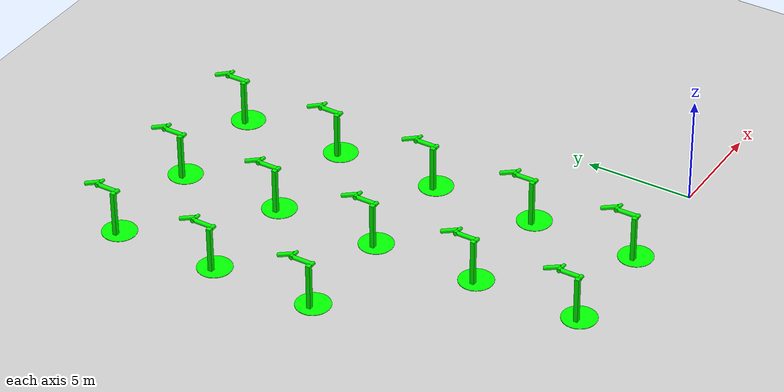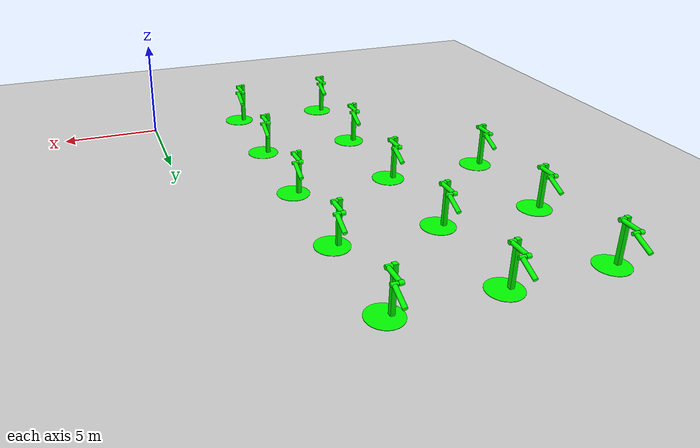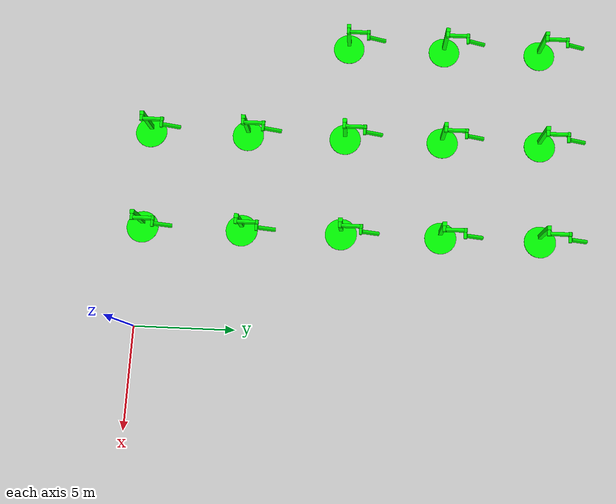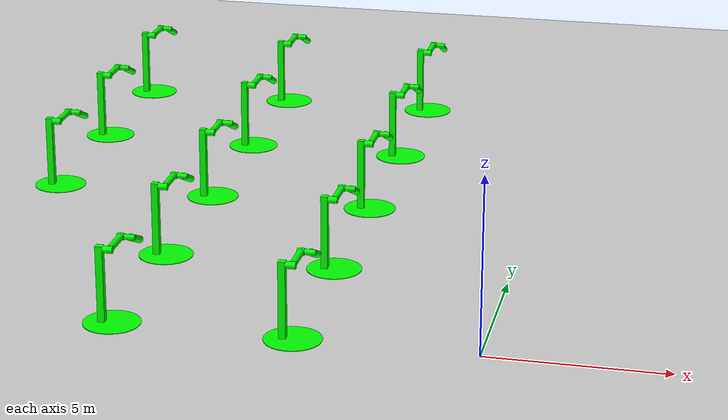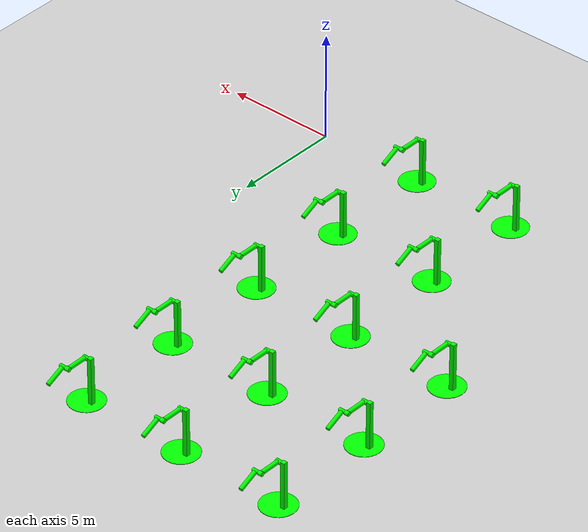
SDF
<sdf version="1.6">
 <world name="double_pendulums">
  <model name="ground_plane">
   <static>true</static>
   <link name="link">
    <collision name="collision">
     <geometry><plane><normal>0 0 1</normal><size>100 100</size></plane></geometry>
    </collision>
    <visual name="visual">
     <geometry><plane><normal>0 0 1</normal><size>100 100</size></plane></geometry>
     <material>
      <ambient>0.8 0.8 0.8 1</ambient>
      <diffuse>0.8 0.8 0.8 1</diffuse>
      <specular>0.8 0.8 0.8 1</specular>
     </material>
    </visual>
   </link>
  </model>
  <model name="dbl_pendulum_3">
   <pose>-10 0 0 0 0 0</pose>
   <link name="base">
    <inertial><mass>100</mass></inertial>
    <visual name="vis_plate_on_ground">
     <pose>0 0 0.01 0 0 0</pose>
     <geometry><cylinder><radius>0.8</radius><length>0.02</length></cylinder></geometry>
     <material><ambient>0 1 0 1</ambient><diffuse>0 1 0 1</diffuse><specular>0 1 0 1</specular></material>
    </visual>
    <visual name="vis_pole">
     <pose>-0.275 0 1.1 0 0 0</pose>
     <geometry><box><size>0.2 0.2 2.2</size></box></geometry>
     <material><ambient>0 1 0 1</ambient><diffuse>0 1 0 1</diffuse><specular>0 1 0 1</specular></material>
    </visual>
    <collision name="col_plate_on_ground">
     <pose>0 0 0.01 0 0 0</pose>
     <geometry><cylinder><radius>0.8</radius><length>0.02</length></cylinder></geometry>
    </collision>
    <collision name="col_pole">
     <pose>-0.275 0 1.1 0 0 0</pose>
     <geometry><box><size>0.2 0.2 2.2</size></box></geometry>
    </collision>
   </link>
   <link name="upper_link">
    <pose>0 0 2.1 -1.5708 0 0</pose>
    <inertial><pose>0 0 0.5 0 0 0</pose></inertial>
    <visual name="vis_upper_joint">
     <pose>-0.05 0 0 0 1.5708 0</pose>
     <geometry><cylinder><radius>0.1</radius><length>0.3</length></cylinder></geometry>
     <material><ambient>0 1 0 1</ambient><diffuse>0 1 0 1</diffuse><specular>0 1 0 1</specular></material>
    </visual>
    <visual name="vis_lower_joint">
     <pose>0 0 1.0 0 1.5708 0</pose>
     <geometry><cylinder><radius>0.1</radius><length>0.2</length></cylinder></geometry>
     <material><ambient>0 1 0 1</ambient><diffuse>0 1 0 1</diffuse><specular>0 1 0 1</specular></material>
    </visual>
    <visual name="vis_cylinder">
     <pose>0 0 0.5 0 0 0</pose>
     <geometry><cylinder><radius>0.1</radius><length>0.9</length></cylinder></geometry>
     <material><ambient>0 1 0 1</ambient><diffuse>0 1 0 1</diffuse><specular>0 1 0 1</specular></material>
    </visual>
    <collision name="col_upper_joint">
     <pose>-0.05 0 0 0 1.5708 0</pose>
     <geometry><cylinder><radius>0.1</radius><length>0.3</length></cylinder></geometry>
    </collision>
    <collision name="col_lower_joint">
     <pose>0 0 1.0 0 1.5708 0</pose>
     <geometry><cylinder><radius>0.1</radius><length>0.2</length></cylinder></geometry>
    </collision>
    <collision name="col_cylinder">
     <pose>0 0 0.5 0 0 0</pose>
     <geometry><cylinder><radius>0.1</radius><length>0.9</length></cylinder></geometry>
    </collision>
   </link>
   <link name="lower_link">
    <pose>0.25 1.0 2.1 -2 0 0</pose>
    <inertial><pose>0 0 0.5 0 0 0</pose></inertial>
    <visual name="vis_lower_joint">
     <pose>0 0 0 0 1.5708 0</pose>
     <geometry><cylinder><radius>0.08</radius><length>0.3</length></cylinder></geometry>
     <material><ambient>0 1 0 1</ambient><diffuse>0 1 0 1</diffuse><specular>0 1 0 1</specular></material>
    </visual>
    <visual name="vis_cylinder">
     <pose>0 0 0.5 0 0 0</pose>
     <geometry><cylinder><radius>0.1</radius><length>0.9</length></cylinder></geometry>
     <material><ambient>0 1 0 1</ambient><diffuse>0 1 0 1</diffuse><specular>0 1 0 1</specular></material>
    </visual>
    <collision name="col_lower_joint">
     <pose>0 0 0 0 1.5708 0</pose>
     <geometry><cylinder><radius>0.08</radius><length>0.3</length></cylinder></geometry>
    </collision>
    <collision name="col_cylinder">
     <pose>0 0 0.5 0 0 0</pose>
     <geometry><cylinder><radius>0.1</radius><length>0.9</length></cylinder></geometry>
    </collision>
   </link>
   <joint name="upper_joint" type="revolute">
    <parent>base</parent>
    <child>upper_link</child>
    <axis><xyz>1.0 0 0</xyz></axis>
   </joint>
   <joint name="lower_joint" type="revolute">
    <parent>upper_link</parent>
    <child>lower_link</child>
    <axis><xyz>1.0 0 0</xyz></axis>
   </joint>
  </model>
  <model name="dbl_pendulum_4">
   <pose>-5 0 0 0 0 0</pose>
   <link name="base">
    <inertial><mass>100</mass></inertial>
    <visual name="vis_plate_on_ground">
     <pose>0 0 0.01 0 0 0</pose>
     <geometry><cylinder><radius>0.8</radius><length>0.02</length></cylinder></geometry>
     <material><ambient>0 1 0 1</ambient><diffuse>0 1 0 1</diffuse><specular>0 1 0 1</specular></material>
    </visual>
    <visual name="vis_pole">
     <pose>-0.275 0 1.1 0 0 0</pose>
     <geometry><box><size>0.2 0.2 2.2</size></box></geometry>
     <material><ambient>0 1 0 1</ambient><diffuse>0 1 0 1</diffuse><specular>0 1 0 1</specular></material>
    </visual>
    <collision name="col_plate_on_ground">
     <pose>0 0 0.01 0 0 0</pose>
     <geometry><cylinder><radius>0.8</radius><length>0.02</length></cylinder></geometry>
    </collision>
    <collision name="col_pole">
     <pose>-0.275 0 1.1 0 0 0</pose>
     <geometry><box><size>0.2 0.2 2.2</size></box></geometry>
    </collision>
   </link>
   <link name="upper_link">
    <pose>0 0 2.1 -1.5708 0 0</pose>
    <inertial><pose>0 0 0.5 0 0 0</pose></inertial>
    <visual name="vis_upper_joint">
     <pose>-0.05 0 0 0 1.5708 0</pose>
     <geometry><cylinder><radius>0.1</radius><length>0.3</length></cylinder></geometry>
     <material><ambient>0 1 0 1</ambient><diffuse>0 1 0 1</diffuse><specular>0 1 0 1</specular></material>
    </visual>
    <visual name="vis_lower_joint">
     <pose>0 0 1.0 0 1.5708 0</pose>
     <geometry><cylinder><radius>0.1</radius><length>0.2</length></cylinder></geometry>
     <material><ambient>0 1 0 1</ambient><diffuse>0 1 0 1</diffuse><specular>0 1 0 1</specular></material>
    </visual>
    <visual name="vis_cylinder">
     <pose>0 0 0.5 0 0 0</pose>
     <geometry><cylinder><radius>0.1</radius><length>0.9</length></cylinder></geometry>
     <material><ambient>0 1 0 1</ambient><diffuse>0 1 0 1</diffuse><specular>0 1 0 1</specular></material>
    </visual>
    <collision name="col_upper_joint">
     <pose>-0.05 0 0 0 1.5708 0</pose>
     <geometry><cylinder><radius>0.1</radius><length>0.3</length></cylinder></geometry>
    </collision>
    <collision name="col_lower_joint">
     <pose>0 0 1.0 0 1.5708 0</pose>
     <geometry><cylinder><radius>0.1</radius><length>0.2</length></cylinder></geometry>
    </collision>
    <collision name="col_cylinder">
     <pose>0 0 0.5 0 0 0</pose>
     <geometry><cylinder><radius>0.1</radius><length>0.9</length></cylinder></geometry>
    </collision>
   </link>
   <link name="lower_link">
    <pose>0.25 1.0 2.1 -2 0 0</pose>
    <inertial><pose>0 0 0.5 0 0 0</pose></inertial>
    <visual name="vis_lower_joint">
     <pose>0 0 0 0 1.5708 0</pose>
     <geometry><cylinder><radius>0.08</radius><length>0.3</length></cylinder></geometry>
     <material><ambient>0 1 0 1</ambient><diffuse>0 1 0 1</diffuse><specular>0 1 0 1</specular></material>
    </visual>
    <visual name="vis_cylinder">
     <pose>0 0 0.5 0 0 0</pose>
     <geometry><cylinder><radius>0.1</radius><length>0.9</length></cylinder></geometry>
     <material><ambient>0 1 0 1</ambient><diffuse>0 1 0 1</diffuse><specular>0 1 0 1</specular></material>
    </visual>
    <collision name="col_lower_joint">
     <pose>0 0 0 0 1.5708 0</pose>
     <geometry><cylinder><radius>0.08</radius><length>0.3</length></cylinder></geometry>
    </collision>
    <collision name="col_cylinder">
     <pose>0 0 0.5 0 0 0</pose>
     <geometry><cylinder><radius>0.1</radius><length>0.9</length></cylinder></geometry>
    </collision>
   </link>
   <joint name="upper_joint" type="revolute">
    <parent>base</parent>
    <child>upper_link</child>
    <axis><xyz>1.0 0 0</xyz></axis>
   </joint>
   <joint name="lower_joint" type="revolute">
    <parent>upper_link</parent>
    <child>lower_link</child>
    <axis><xyz>1.0 0 0</xyz></axis>
   </joint>
  </model>
  <model name="dbl_pendulum_13">
   <pose>-10 5 0 0 0 0</pose>
   <link name="base">
    <inertial><mass>100</mass></inertial>
    <visual name="vis_plate_on_ground">
     <pose>0 0 0.01 0 0 0</pose>
     <geometry><cylinder><radius>0.8</radius><length>0.02</length></cylinder></geometry>
     <material><ambient>0 1 0 1</ambient><diffuse>0 1 0 1</diffuse><specular>0 1 0 1</specular></material>
    </visual>
    <visual name="vis_pole">
     <pose>-0.275 0 1.1 0 0 0</pose>
     <geometry><box><size>0.2 0.2 2.2</size></box></geometry>
     <material><ambient>0 1 0 1</ambient><diffuse>0 1 0 1</diffuse><specular>0 1 0 1</specular></material>
    </visual>
    <collision name="col_plate_on_ground">
     <pose>0 0 0.01 0 0 0</pose>
     <geometry><cylinder><radius>0.8</radius><length>0.02</length></cylinder></geometry>
    </collision>
    <collision name="col_pole">
     <pose>-0.275 0 1.1 0 0 0</pose>
     <geometry><box><size>0.2 0.2 2.2</size></box></geometry>
    </collision>
   </link>
   <link name="upper_link">
    <pose>0 0 2.1 -1.5708 0 0</pose>
    <inertial><pose>0 0 0.5 0 0 0</pose></inertial>
    <visual name="vis_upper_joint">
     <pose>-0.05 0 0 0 1.5708 0</pose>
     <geometry><cylinder><radius>0.1</radius><length>0.3</length></cylinder></geometry>
     <material><ambient>0 1 0 1</ambient><diffuse>0 1 0 1</diffuse><specular>0 1 0 1</specular></material>
    </visual>
    <visual name="vis_lower_joint">
     <pose>0 0 1.0 0 1.5708 0</pose>
     <geometry><cylinder><radius>0.1</radius><length>0.2</length></cylinder></geometry>
     <material><ambient>0 1 0 1</ambient><diffuse>0 1 0 1</diffuse><specular>0 1 0 1</specular></material>
    </visual>
    <visual name="vis_cylinder">
     <pose>0 0 0.5 0 0 0</pose>
     <geometry><cylinder><radius>0.1</radius><length>0.9</length></cylinder></geometry>
     <material><ambient>0 1 0 1</ambient><diffuse>0 1 0 1</diffuse><specular>0 1 0 1</specular></material>
    </visual>
    <collision name="col_upper_joint">
     <pose>-0.05 0 0 0 1.5708 0</pose>
     <geometry><cylinder><radius>0.1</radius><length>0.3</length></cylinder></geometry>
    </collision>
    <collision name="col_lower_joint">
     <pose>0 0 1.0 0 1.5708 0</pose>
     <geometry><cylinder><radius>0.1</radius><length>0.2</length></cylinder></geometry>
    </collision>
    <collision name="col_cylinder">
     <pose>0 0 0.5 0 0 0</pose>
     <geometry><cylinder><radius>0.1</radius><length>0.9</length></cylinder></geometry>
    </collision>
   </link>
   <link name="lower_link">
    <pose>0.25 1.0 2.1 -2 0 0</pose>
    <inertial><pose>0 0 0.5 0 0 0</pose></inertial>
    <visual name="vis_lower_joint">
     <pose>0 0 0 0 1.5708 0</pose>
     <geometry><cylinder><radius>0.08</radius><length>0.3</length></cylinder></geometry>
     <material><ambient>0 1 0 1</ambient><diffuse>0 1 0 1</diffuse><specular>0 1 0 1</specular></material>
    </visual>
    <visual name="vis_cylinder">
     <pose>0 0 0.5 0 0 0</pose>
     <geometry><cylinder><radius>0.1</radius><length>0.9</length></cylinder></geometry>
     <material><ambient>0 1 0 1</ambient><diffuse>0 1 0 1</diffuse><specular>0 1 0 1</specular></material>
    </visual>
    <collision name="col_lower_joint">
     <pose>0 0 0 0 1.5708 0</pose>
     <geometry><cylinder><radius>0.08</radius><length>0.3</length></cylinder></geometry>
    </collision>
    <collision name="col_cylinder">
     <pose>0 0 0.5 0 0 0</pose>
     <geometry><cylinder><radius>0.1</radius><length>0.9</length></cylinder></geometry>
    </collision>
   </link>
   <joint name="upper_joint" type="revolute">
    <parent>base</parent>
    <child>upper_link</child>
    <axis><xyz>1.0 0 0</xyz></axis>
   </joint>
   <joint name="lower_joint" type="revolute">
    <parent>upper_link</parent>
    <child>lower_link</child>
    <axis><xyz>1.0 0 0</xyz></axis>
   </joint>
  </model>
  <model name="dbl_pendulum_14">
   <pose>-5 5 0 0 0 0</pose>
   <link name="base">
    <inertial><mass>100</mass></inertial>
    <visual name="vis_plate_on_ground">
     <pose>0 0 0.01 0 0 0</pose>
     <geometry><cylinder><radius>0.8</radius><length>0.02</length></cylinder></geometry>
     <material><ambient>0 1 0 1</ambient><diffuse>0 1 0 1</diffuse><specular>0 1 0 1</specular></material>
    </visual>
    <visual name="vis_pole">
     <pose>-0.275 0 1.1 0 0 0</pose>
     <geometry><box><size>0.2 0.2 2.2</size></box></geometry>
     <material><ambient>0 1 0 1</ambient><diffuse>0 1 0 1</diffuse><specular>0 1 0 1</specular></material>
    </visual>
    <collision name="col_plate_on_ground">
     <pose>0 0 0.01 0 0 0</pose>
     <geometry><cylinder><radius>0.8</radius><length>0.02</length></cylinder></geometry>
    </collision>
    <collision name="col_pole">
     <pose>-0.275 0 1.1 0 0 0</pose>
     <geometry><box><size>0.2 0.2 2.2</size></box></geometry>
    </collision>
   </link>
   <link name="upper_link">
    <pose>0 0 2.1 -1.5708 0 0</pose>
    <inertial><pose>0 0 0.5 0 0 0</pose></inertial>
    <visual name="vis_upper_joint">
     <pose>-0.05 0 0 0 1.5708 0</pose>
     <geometry><cylinder><radius>0.1</radius><length>0.3</length></cylinder></geometry>
     <material><ambient>0 1 0 1</ambient><diffuse>0 1 0 1</diffuse><specular>0 1 0 1</specular></material>
    </visual>
    <visual name="vis_lower_joint">
     <pose>0 0 1.0 0 1.5708 0</pose>
     <geometry><cylinder><radius>0.1</radius><length>0.2</length></cylinder></geometry>
     <material><ambient>0 1 0 1</ambient><diffuse>0 1 0 1</diffuse><specular>0 1 0 1</specular></material>
    </visual>
    <visual name="vis_cylinder">
     <pose>0 0 0.5 0 0 0</pose>
     <geometry><cylinder><radius>0.1</radius><length>0.9</length></cylinder></geometry>
     <material><ambient>0 1 0 1</ambient><diffuse>0 1 0 1</diffuse><specular>0 1 0 1</specular></material>
    </visual>
    <collision name="col_upper_joint">
     <pose>-0.05 0 0 0 1.5708 0</pose>
     <geometry><cylinder><radius>0.1</radius><length>0.3</length></cylinder></geometry>
    </collision>
    <collision name="col_lower_joint">
     <pose>0 0 1.0 0 1.5708 0</pose>
     <geometry><cylinder><radius>0.1</radius><length>0.2</length></cylinder></geometry>
    </collision>
    <collision name="col_cylinder">
     <pose>0 0 0.5 0 0 0</pose>
     <geometry><cylinder><radius>0.1</radius><length>0.9</length></cylinder></geometry>
    </collision>
   </link>
   <link name="lower_link">
    <pose>0.25 1.0 2.1 -2 0 0</pose>
    <inertial><pose>0 0 0.5 0 0 0</pose></inertial>
    <visual name="vis_lower_joint">
     <pose>0 0 0 0 1.5708 0</pose>
     <geometry><cylinder><radius>0.08</radius><length>0.3</length></cylinder></geometry>
     <material><ambient>0 1 0 1</ambient><diffuse>0 1 0 1</diffuse><specular>0 1 0 1</specular></material>
    </visual>
    <visual name="vis_cylinder">
     <pose>0 0 0.5 0 0 0</pose>
     <geometry><cylinder><radius>0.1</radius><length>0.9</length></cylinder></geometry>
     <material><ambient>0 1 0 1</ambient><diffuse>0 1 0 1</diffuse><specular>0 1 0 1</specular></material>
    </visual>
    <collision name="col_lower_joint">
     <pose>0 0 0 0 1.5708 0</pose>
     <geometry><cylinder><radius>0.08</radius><length>0.3</length></cylinder></geometry>
    </collision>
    <collision name="col_cylinder">
     <pose>0 0 0.5 0 0 0</pose>
     <geometry><cylinder><radius>0.1</radius><length>0.9</length></cylinder></geometry>
    </collision>
   </link>
   <joint name="upper_joint" type="revolute">
    <parent>base</parent>
    <child>upper_link</child>
    <axis><xyz>1.0 0 0</xyz></axis>
   </joint>
   <joint name="lower_joint" type="revolute">
    <parent>upper_link</parent>
    <child>lower_link</child>
    <axis><xyz>1.0 0 0</xyz></axis>
   </joint>
  </model>
  <model name="dbl_pendulum_22">
   <pose>-15 10 0 0 0 0</pose>
   <link name="base">
    <inertial><mass>100</mass></inertial>
    <visual name="vis_plate_on_ground">
     <pose>0 0 0.01 0 0 0</pose>
     <geometry><cylinder><radius>0.8</radius><length>0.02</length></cylinder></geometry>
     <material><ambient>0 1 0 1</ambient><diffuse>0 1 0 1</diffuse><specular>0 1 0 1</specular></material>
    </visual>
    <visual name="vis_pole">
     <pose>-0.275 0 1.1 0 0 0</pose>
     <geometry><box><size>0.2 0.2 2.2</size></box></geometry>
     <material><ambient>0 1 0 1</ambient><diffuse>0 1 0 1</diffuse><specular>0 1 0 1</specular></material>
    </visual>
    <collision name="col_plate_on_ground">
     <pose>0 0 0.01 0 0 0</pose>
     <geometry><cylinder><radius>0.8</radius><length>0.02</length></cylinder></geometry>
    </collision>
    <collision name="col_pole">
     <pose>-0.275 0 1.1 0 0 0</pose>
     <geometry><box><size>0.2 0.2 2.2</size></box></geometry>
    </collision>
   </link>
   <link name="upper_link">
    <pose>0 0 2.1 -1.5708 0 0</pose>
    <inertial><pose>0 0 0.5 0 0 0</pose></inertial>
    <visual name="vis_upper_joint">
     <pose>-0.05 0 0 0 1.5708 0</pose>
     <geometry><cylinder><radius>0.1</radius><length>0.3</length></cylinder></geometry>
     <material><ambient>0 1 0 1</ambient><diffuse>0 1 0 1</diffuse><specular>0 1 0 1</specular></material>
    </visual>
    <visual name="vis_lower_joint">
     <pose>0 0 1.0 0 1.5708 0</pose>
     <geometry><cylinder><radius>0.1</radius><length>0.2</length></cylinder></geometry>
     <material><ambient>0 1 0 1</ambient><diffuse>0 1 0 1</diffuse><specular>0 1 0 1</specular></material>
    </visual>
    <visual name="vis_cylinder">
     <pose>0 0 0.5 0 0 0</pose>
     <geometry><cylinder><radius>0.1</radius><length>0.9</length></cylinder></geometry>
     <material><ambient>0 1 0 1</ambient><diffuse>0 1 0 1</diffuse><specular>0 1 0 1</specular></material>
    </visual>
    <collision name="col_upper_joint">
     <pose>-0.05 0 0 0 1.5708 0</pose>
     <geometry><cylinder><radius>0.1</radius><length>0.3</length></cylinder></geometry>
    </collision>
    <collision name="col_lower_joint">
     <pose>0 0 1.0 0 1.5708 0</pose>
     <geometry><cylinder><radius>0.1</radius><length>0.2</length></cylinder></geometry>
    </collision>
    <collision name="col_cylinder">
     <pose>0 0 0.5 0 0 0</pose>
     <geometry><cylinder><radius>0.1</radius><length>0.9</length></cylinder></geometry>
    </collision>
   </link>
   <link name="lower_link">
    <pose>0.25 1.0 2.1 -2 0 0</pose>
    <inertial><pose>0 0 0.5 0 0 0</pose></inertial>
    <visual name="vis_lower_joint">
     <pose>0 0 0 0 1.5708 0</pose>
     <geometry><cylinder><radius>0.08</radius><length>0.3</length></cylinder></geometry>
     <material><ambient>0 1 0 1</ambient><diffuse>0 1 0 1</diffuse><specular>0 1 0 1</specular></material>
    </visual>
    <visual name="vis_cylinder">
     <pose>0 0 0.5 0 0 0</pose>
     <geometry><cylinder><radius>0.1</radius><length>0.9</length></cylinder></geometry>
     <material><ambient>0 1 0 1</ambient><diffuse>0 1 0 1</diffuse><specular>0 1 0 1</specular></material>
    </visual>
    <collision name="col_lower_joint">
     <pose>0 0 0 0 1.5708 0</pose>
     <geometry><cylinder><radius>0.08</radius><length>0.3</length></cylinder></geometry>
    </collision>
    <collision name="col_cylinder">
     <pose>0 0 0.5 0 0 0</pose>
     <geometry><cylinder><radius>0.1</radius><length>0.9</length></cylinder></geometry>
    </collision>
   </link>
   <joint name="upper_joint" type="revolute">
    <parent>base</parent>
    <child>upper_link</child>
    <axis><xyz>1.0 0 0</xyz></axis>
   </joint>
   <joint name="lower_joint" type="revolute">
    <parent>upper_link</parent>
    <child>lower_link</child>
    <axis><xyz>1.0 0 0</xyz></axis>
   </joint>
  </model>
  <model name="dbl_pendulum_23">
   <pose>-10 10 0 0 0 0</pose>
   <link name="base">
    <inertial><mass>100</mass></inertial>
    <visual name="vis_plate_on_ground">
     <pose>0 0 0.01 0 0 0</pose>
     <geometry><cylinder><radius>0.8</radius><length>0.02</length></cylinder></geometry>
     <material><ambient>0 1 0 1</ambient><diffuse>0 1 0 1</diffuse><specular>0 1 0 1</specular></material>
    </visual>
    <visual name="vis_pole">
     <pose>-0.275 0 1.1 0 0 0</pose>
     <geometry><box><size>0.2 0.2 2.2</size></box></geometry>
     <material><ambient>0 1 0 1</ambient><diffuse>0 1 0 1</diffuse><specular>0 1 0 1</specular></material>
    </visual>
    <collision name="col_plate_on_ground">
     <pose>0 0 0.01 0 0 0</pose>
     <geometry><cylinder><radius>0.8</radius><length>0.02</length></cylinder></geometry>
    </collision>
    <collision name="col_pole">
     <pose>-0.275 0 1.1 0 0 0</pose>
     <geometry><box><size>0.2 0.2 2.2</size></box></geometry>
    </collision>
   </link>
   <link name="upper_link">
    <pose>0 0 2.1 -1.5708 0 0</pose>
    <inertial><pose>0 0 0.5 0 0 0</pose></inertial>
    <visual name="vis_upper_joint">
     <pose>-0.05 0 0 0 1.5708 0</pose>
     <geometry><cylinder><radius>0.1</radius><length>0.3</length></cylinder></geometry>
     <material><ambient>0 1 0 1</ambient><diffuse>0 1 0 1</diffuse><specular>0 1 0 1</specular></material>
    </visual>
    <visual name="vis_lower_joint">
     <pose>0 0 1.0 0 1.5708 0</pose>
     <geometry><cylinder><radius>0.1</radius><length>0.2</length></cylinder></geometry>
     <material><ambient>0 1 0 1</ambient><diffuse>0 1 0 1</diffuse><specular>0 1 0 1</specular></material>
    </visual>
    <visual name="vis_cylinder">
     <pose>0 0 0.5 0 0 0</pose>
     <geometry><cylinder><radius>0.1</radius><length>0.9</length></cylinder></geometry>
     <material><ambient>0 1 0 1</ambient><diffuse>0 1 0 1</diffuse><specular>0 1 0 1</specular></material>
    </visual>
    <collision name="col_upper_joint">
     <pose>-0.05 0 0 0 1.5708 0</pose>
     <geometry><cylinder><radius>0.1</radius><length>0.3</length></cylinder></geometry>
    </collision>
    <collision name="col_lower_joint">
     <pose>0 0 1.0 0 1.5708 0</pose>
     <geometry><cylinder><radius>0.1</radius><length>0.2</length></cylinder></geometry>
    </collision>
    <collision name="col_cylinder">
     <pose>0 0 0.5 0 0 0</pose>
     <geometry><cylinder><radius>0.1</radius><length>0.9</length></cylinder></geometry>
    </collision>
   </link>
   <link name="lower_link">
    <pose>0.25 1.0 2.1 -2 0 0</pose>
    <inertial><pose>0 0 0.5 0 0 0</pose></inertial>
    <visual name="vis_lower_joint">
     <pose>0 0 0 0 1.5708 0</pose>
     <geometry><cylinder><radius>0.08</radius><length>0.3</length></cylinder></geometry>
     <material><ambient>0 1 0 1</ambient><diffuse>0 1 0 1</diffuse><specular>0 1 0 1</specular></material>
    </visual>
    <visual name="vis_cylinder">
     <pose>0 0 0.5 0 0 0</pose>
     <geometry><cylinder><radius>0.1</radius><length>0.9</length></cylinder></geometry>
     <material><ambient>0 1 0 1</ambient><diffuse>0 1 0 1</diffuse><specular>0 1 0 1</specular></material>
    </visual>
    <collision name="col_lower_joint">
     <pose>0 0 0 0 1.5708 0</pose>
     <geometry><cylinder><radius>0.08</radius><length>0.3</length></cylinder></geometry>
    </collision>
    <collision name="col_cylinder">
     <pose>0 0 0.5 0 0 0</pose>
     <geometry><cylinder><radius>0.1</radius><length>0.9</length></cylinder></geometry>
    </collision>
   </link>
   <joint name="upper_joint" type="revolute">
    <parent>base</parent>
    <child>upper_link</child>
    <axis><xyz>1.0 0 0</xyz></axis>
   </joint>
   <joint name="lower_joint" type="revolute">
    <parent>upper_link</parent>
    <child>lower_link</child>
    <axis><xyz>1.0 0 0</xyz></axis>
   </joint>
  </model>
  <model name="dbl_pendulum_24">
   <pose>-5 10 0 0 0 0</pose>
   <link name="base">
    <inertial><mass>100</mass></inertial>
    <visual name="vis_plate_on_ground">
     <pose>0 0 0.01 0 0 0</pose>
     <geometry><cylinder><radius>0.8</radius><length>0.02</length></cylinder></geometry>
     <material><ambient>0 1 0 1</ambient><diffuse>0 1 0 1</diffuse><specular>0 1 0 1</specular></material>
    </visual>
    <visual name="vis_pole">
     <pose>-0.275 0 1.1 0 0 0</pose>
     <geometry><box><size>0.2 0.2 2.2</size></box></geometry>
     <material><ambient>0 1 0 1</ambient><diffuse>0 1 0 1</diffuse><specular>0 1 0 1</specular></material>
    </visual>
    <collision name="col_plate_on_ground">
     <pose>0 0 0.01 0 0 0</pose>
     <geometry><cylinder><radius>0.8</radius><length>0.02</length></cylinder></geometry>
    </collision>
    <collision name="col_pole">
     <pose>-0.275 0 1.1 0 0 0</pose>
     <geometry><box><size>0.2 0.2 2.2</size></box></geometry>
    </collision>
   </link>
   <link name="upper_link">
    <pose>0 0 2.1 -1.5708 0 0</pose>
    <inertial><pose>0 0 0.5 0 0 0</pose></inertial>
    <visual name="vis_upper_joint">
     <pose>-0.05 0 0 0 1.5708 0</pose>
     <geometry><cylinder><radius>0.1</radius><length>0.3</length></cylinder></geometry>
     <material><ambient>0 1 0 1</ambient><diffuse>0 1 0 1</diffuse><specular>0 1 0 1</specular></material>
    </visual>
    <visual name="vis_lower_joint">
     <pose>0 0 1.0 0 1.5708 0</pose>
     <geometry><cylinder><radius>0.1</radius><length>0.2</length></cylinder></geometry>
     <material><ambient>0 1 0 1</ambient><diffuse>0 1 0 1</diffuse><specular>0 1 0 1</specular></material>
    </visual>
    <visual name="vis_cylinder">
     <pose>0 0 0.5 0 0 0</pose>
     <geometry><cylinder><radius>0.1</radius><length>0.9</length></cylinder></geometry>
     <material><ambient>0 1 0 1</ambient><diffuse>0 1 0 1</diffuse><specular>0 1 0 1</specular></material>
    </visual>
    <collision name="col_upper_joint">
     <pose>-0.05 0 0 0 1.5708 0</pose>
     <geometry><cylinder><radius>0.1</radius><length>0.3</length></cylinder></geometry>
    </collision>
    <collision name="col_lower_joint">
     <pose>0 0 1.0 0 1.5708 0</pose>
     <geometry><cylinder><radius>0.1</radius><length>0.2</length></cylinder></geometry>
    </collision>
    <collision name="col_cylinder">
     <pose>0 0 0.5 0 0 0</pose>
     <geometry><cylinder><radius>0.1</radius><length>0.9</length></cylinder></geometry>
    </collision>
   </link>
   <link name="lower_link">
    <pose>0.25 1.0 2.1 -2 0 0</pose>
    <inertial><pose>0 0 0.5 0 0 0</pose></inertial>
    <visual name="vis_lower_joint">
     <pose>0 0 0 0 1.5708 0</pose>
     <geometry><cylinder><radius>0.08</radius><length>0.3</length></cylinder></geometry>
     <material><ambient>0 1 0 1</ambient><diffuse>0 1 0 1</diffuse><specular>0 1 0 1</specular></material>
    </visual>
    <visual name="vis_cylinder">
     <pose>0 0 0.5 0 0 0</pose>
     <geometry><cylinder><radius>0.1</radius><length>0.9</length></cylinder></geometry>
     <material><ambient>0 1 0 1</ambient><diffuse>0 1 0 1</diffuse><specular>0 1 0 1</specular></material>
    </visual>
    <collision name="col_lower_joint">
     <pose>0 0 0 0 1.5708 0</pose>
     <geometry><cylinder><radius>0.08</radius><length>0.3</length></cylinder></geometry>
    </collision>
    <collision name="col_cylinder">
     <pose>0 0 0.5 0 0 0</pose>
     <geometry><cylinder><radius>0.1</radius><length>0.9</length></cylinder></geometry>
    </collision>
   </link>
   <joint name="upper_joint" type="revolute">
    <parent>base</parent>
    <child>upper_link</child>
    <axis><xyz>1.0 0 0</xyz></axis>
   </joint>
   <joint name="lower_joint" type="revolute">
    <parent>upper_link</parent>
    <child>lower_link</child>
    <axis><xyz>1.0 0 0</xyz></axis>
   </joint>
  </model>
  <model name="dbl_pendulum_32">
   <pose>-15 15 0 0 0 0</pose>
   <link name="base">
    <inertial><mass>100</mass></inertial>
    <visual name="vis_plate_on_ground">
     <pose>0 0 0.01 0 0 0</pose>
     <geometry><cylinder><radius>0.8</radius><length>0.02</length></cylinder></geometry>
     <material><ambient>0 1 0 1</ambient><diffuse>0 1 0 1</diffuse><specular>0 1 0 1</specular></material>
    </visual>
    <visual name="vis_pole">
     <pose>-0.275 0 1.1 0 0 0</pose>
     <geometry><box><size>0.2 0.2 2.2</size></box></geometry>
     <material><ambient>0 1 0 1</ambient><diffuse>0 1 0 1</diffuse><specular>0 1 0 1</specular></material>
    </visual>
    <collision name="col_plate_on_ground">
     <pose>0 0 0.01 0 0 0</pose>
     <geometry><cylinder><radius>0.8</radius><length>0.02</length></cylinder></geometry>
    </collision>
    <collision name="col_pole">
     <pose>-0.275 0 1.1 0 0 0</pose>
     <geometry><box><size>0.2 0.2 2.2</size></box></geometry>
    </collision>
   </link>
   <link name="upper_link">
    <pose>0 0 2.1 -1.5708 0 0</pose>
    <inertial><pose>0 0 0.5 0 0 0</pose></inertial>
    <visual name="vis_upper_joint">
     <pose>-0.05 0 0 0 1.5708 0</pose>
     <geometry><cylinder><radius>0.1</radius><length>0.3</length></cylinder></geometry>
     <material><ambient>0 1 0 1</ambient><diffuse>0 1 0 1</diffuse><specular>0 1 0 1</specular></material>
    </visual>
    <visual name="vis_lower_joint">
     <pose>0 0 1.0 0 1.5708 0</pose>
     <geometry><cylinder><radius>0.1</radius><length>0.2</length></cylinder></geometry>
     <material><ambient>0 1 0 1</ambient><diffuse>0 1 0 1</diffuse><specular>0 1 0 1</specular></material>
    </visual>
    <visual name="vis_cylinder">
     <pose>0 0 0.5 0 0 0</pose>
     <geometry><cylinder><radius>0.1</radius><length>0.9</length></cylinder></geometry>
     <material><ambient>0 1 0 1</ambient><diffuse>0 1 0 1</diffuse><specular>0 1 0 1</specular></material>
    </visual>
    <collision name="col_upper_joint">
     <pose>-0.05 0 0 0 1.5708 0</pose>
     <geometry><cylinder><radius>0.1</radius><length>0.3</length></cylinder></geometry>
    </collision>
    <collision name="col_lower_joint">
     <pose>0 0 1.0 0 1.5708 0</pose>
     <geometry><cylinder><radius>0.1</radius><length>0.2</length></cylinder></geometry>
    </collision>
    <collision name="col_cylinder">
     <pose>0 0 0.5 0 0 0</pose>
     <geometry><cylinder><radius>0.1</radius><length>0.9</length></cylinder></geometry>
    </collision>
   </link>
   <link name="lower_link">
    <pose>0.25 1.0 2.1 -2 0 0</pose>
    <inertial><pose>0 0 0.5 0 0 0</pose></inertial>
    <visual name="vis_lower_joint">
     <pose>0 0 0 0 1.5708 0</pose>
     <geometry><cylinder><radius>0.08</radius><length>0.3</length></cylinder></geometry>
     <material><ambient>0 1 0 1</ambient><diffuse>0 1 0 1</diffuse><specular>0 1 0 1</specular></material>
    </visual>
    <visual name="vis_cylinder">
     <pose>0 0 0.5 0 0 0</pose>
     <geometry><cylinder><radius>0.1</radius><length>0.9</length></cylinder></geometry>
     <material><ambient>0 1 0 1</ambient><diffuse>0 1 0 1</diffuse><specular>0 1 0 1</specular></material>
    </visual>
    <collision name="col_lower_joint">
     <pose>0 0 0 0 1.5708 0</pose>
     <geometry><cylinder><radius>0.08</radius><length>0.3</length></cylinder></geometry>
    </collision>
    <collision name="col_cylinder">
     <pose>0 0 0.5 0 0 0</pose>
     <geometry><cylinder><radius>0.1</radius><length>0.9</length></cylinder></geometry>
    </collision>
   </link>
   <joint name="upper_joint" type="revolute">
    <parent>base</parent>
    <child>upper_link</child>
    <axis><xyz>1.0 0 0</xyz></axis>
   </joint>
   <joint name="lower_joint" type="revolute">
    <parent>upper_link</parent>
    <child>lower_link</child>
    <axis><xyz>1.0 0 0</xyz></axis>
   </joint>
  </model>
  <model name="dbl_pendulum_33">
   <pose>-10 15 0 0 0 0</pose>
   <link name="base">
    <inertial><mass>100</mass></inertial>
    <visual name="vis_plate_on_ground">
     <pose>0 0 0.01 0 0 0</pose>
     <geometry><cylinder><radius>0.8</radius><length>0.02</length></cylinder></geometry>
     <material><ambient>0 1 0 1</ambient><diffuse>0 1 0 1</diffuse><specular>0 1 0 1</specular></material>
    </visual>
    <visual name="vis_pole">
     <pose>-0.275 0 1.1 0 0 0</pose>
     <geometry><box><size>0.2 0.2 2.2</size></box></geometry>
     <material><ambient>0 1 0 1</ambient><diffuse>0 1 0 1</diffuse><specular>0 1 0 1</specular></material>
    </visual>
    <collision name="col_plate_on_ground">
     <pose>0 0 0.01 0 0 0</pose>
     <geometry><cylinder><radius>0.8</radius><length>0.02</length></cylinder></geometry>
    </collision>
    <collision name="col_pole">
     <pose>-0.275 0 1.1 0 0 0</pose>
     <geometry><box><size>0.2 0.2 2.2</size></box></geometry>
    </collision>
   </link>
   <link name="upper_link">
    <pose>0 0 2.1 -1.5708 0 0</pose>
    <inertial><pose>0 0 0.5 0 0 0</pose></inertial>
    <visual name="vis_upper_joint">
     <pose>-0.05 0 0 0 1.5708 0</pose>
     <geometry><cylinder><radius>0.1</radius><length>0.3</length></cylinder></geometry>
     <material><ambient>0 1 0 1</ambient><diffuse>0 1 0 1</diffuse><specular>0 1 0 1</specular></material>
    </visual>
    <visual name="vis_lower_joint">
     <pose>0 0 1.0 0 1.5708 0</pose>
     <geometry><cylinder><radius>0.1</radius><length>0.2</length></cylinder></geometry>
     <material><ambient>0 1 0 1</ambient><diffuse>0 1 0 1</diffuse><specular>0 1 0 1</specular></material>
    </visual>
    <visual name="vis_cylinder">
     <pose>0 0 0.5 0 0 0</pose>
     <geometry><cylinder><radius>0.1</radius><length>0.9</length></cylinder></geometry>
     <material><ambient>0 1 0 1</ambient><diffuse>0 1 0 1</diffuse><specular>0 1 0 1</specular></material>
    </visual>
    <collision name="col_upper_joint">
     <pose>-0.05 0 0 0 1.5708 0</pose>
     <geometry><cylinder><radius>0.1</radius><length>0.3</length></cylinder></geometry>
    </collision>
    <collision name="col_lower_joint">
     <pose>0 0 1.0 0 1.5708 0</pose>
     <geometry><cylinder><radius>0.1</radius><length>0.2</length></cylinder></geometry>
    </collision>
    <collision name="col_cylinder">
     <pose>0 0 0.5 0 0 0</pose>
     <geometry><cylinder><radius>0.1</radius><length>0.9</length></cylinder></geometry>
    </collision>
   </link>
   <link name="lower_link">
    <pose>0.25 1.0 2.1 -2 0 0</pose>
    <inertial><pose>0 0 0.5 0 0 0</pose></inertial>
    <visual name="vis_lower_joint">
     <pose>0 0 0 0 1.5708 0</pose>
     <geometry><cylinder><radius>0.08</radius><length>0.3</length></cylinder></geometry>
     <material><ambient>0 1 0 1</ambient><diffuse>0 1 0 1</diffuse><specular>0 1 0 1</specular></material>
    </visual>
    <visual name="vis_cylinder">
     <pose>0 0 0.5 0 0 0</pose>
     <geometry><cylinder><radius>0.1</radius><length>0.9</length></cylinder></geometry>
     <material><ambient>0 1 0 1</ambient><diffuse>0 1 0 1</diffuse><specular>0 1 0 1</specular></material>
    </visual>
    <collision name="col_lower_joint">
     <pose>0 0 0 0 1.5708 0</pose>
     <geometry><cylinder><radius>0.08</radius><length>0.3</length></cylinder></geometry>
    </collision>
    <collision name="col_cylinder">
     <pose>0 0 0.5 0 0 0</pose>
     <geometry><cylinder><radius>0.1</radius><length>0.9</length></cylinder></geometry>
    </collision>
   </link>
   <joint name="upper_joint" type="revolute">
    <parent>base</parent>
    <child>upper_link</child>
    <axis><xyz>1.0 0 0</xyz></axis>
   </joint>
   <joint name="lower_joint" type="revolute">
    <parent>upper_link</parent>
    <child>lower_link</child>
    <axis><xyz>1.0 0 0</xyz></axis>
   </joint>
  </model>
  <model name="dbl_pendulum_34">
   <pose>-5 15 0 0 0 0</pose>
   <link name="base">
    <inertial><mass>100</mass></inertial>
    <visual name="vis_plate_on_ground">
     <pose>0 0 0.01 0 0 0</pose>
     <geometry><cylinder><radius>0.8</radius><length>0.02</length></cylinder></geometry>
     <material><ambient>0 1 0 1</ambient><diffuse>0 1 0 1</diffuse><specular>0 1 0 1</specular></material>
    </visual>
    <visual name="vis_pole">
     <pose>-0.275 0 1.1 0 0 0</pose>
     <geometry><box><size>0.2 0.2 2.2</size></box></geometry>
     <material><ambient>0 1 0 1</ambient><diffuse>0 1 0 1</diffuse><specular>0 1 0 1</specular></material>
    </visual>
    <collision name="col_plate_on_ground">
     <pose>0 0 0.01 0 0 0</pose>
     <geometry><cylinder><radius>0.8</radius><length>0.02</length></cylinder></geometry>
    </collision>
    <collision name="col_pole">
     <pose>-0.275 0 1.1 0 0 0</pose>
     <geometry><box><size>0.2 0.2 2.2</size></box></geometry>
    </collision>
   </link>
   <link name="upper_link">
    <pose>0 0 2.1 -1.5708 0 0</pose>
    <inertial><pose>0 0 0.5 0 0 0</pose></inertial>
    <visual name="vis_upper_joint">
     <pose>-0.05 0 0 0 1.5708 0</pose>
     <geometry><cylinder><radius>0.1</radius><length>0.3</length></cylinder></geometry>
     <material><ambient>0 1 0 1</ambient><diffuse>0 1 0 1</diffuse><specular>0 1 0 1</specular></material>
    </visual>
    <visual name="vis_lower_joint">
     <pose>0 0 1.0 0 1.5708 0</pose>
     <geometry><cylinder><radius>0.1</radius><length>0.2</length></cylinder></geometry>
     <material><ambient>0 1 0 1</ambient><diffuse>0 1 0 1</diffuse><specular>0 1 0 1</specular></material>
    </visual>
    <visual name="vis_cylinder">
     <pose>0 0 0.5 0 0 0</pose>
     <geometry><cylinder><radius>0.1</radius><length>0.9</length></cylinder></geometry>
     <material><ambient>0 1 0 1</ambient><diffuse>0 1 0 1</diffuse><specular>0 1 0 1</specular></material>
    </visual>
    <collision name="col_upper_joint">
     <pose>-0.05 0 0 0 1.5708 0</pose>
     <geometry><cylinder><radius>0.1</radius><length>0.3</length></cylinder></geometry>
    </collision>
    <collision name="col_lower_joint">
     <pose>0 0 1.0 0 1.5708 0</pose>
     <geometry><cylinder><radius>0.1</radius><length>0.2</length></cylinder></geometry>
    </collision>
    <collision name="col_cylinder">
     <pose>0 0 0.5 0 0 0</pose>
     <geometry><cylinder><radius>0.1</radius><length>0.9</length></cylinder></geometry>
    </collision>
   </link>
   <link name="lower_link">
    <pose>0.25 1.0 2.1 -2 0 0</pose>
    <inertial><pose>0 0 0.5 0 0 0</pose></inertial>
    <visual name="vis_lower_joint">
     <pose>0 0 0 0 1.5708 0</pose>
     <geometry><cylinder><radius>0.08</radius><length>0.3</length></cylinder></geometry>
     <material><ambient>0 1 0 1</ambient><diffuse>0 1 0 1</diffuse><specular>0 1 0 1</specular></material>
    </visual>
    <visual name="vis_cylinder">
     <pose>0 0 0.5 0 0 0</pose>
     <geometry><cylinder><radius>0.1</radius><length>0.9</length></cylinder></geometry>
     <material><ambient>0 1 0 1</ambient><diffuse>0 1 0 1</diffuse><specular>0 1 0 1</specular></material>
    </visual>
    <collision name="col_lower_joint">
     <pose>0 0 0 0 1.5708 0</pose>
     <geometry><cylinder><radius>0.08</radius><length>0.3</length></cylinder></geometry>
    </collision>
    <collision name="col_cylinder">
     <pose>0 0 0.5 0 0 0</pose>
     <geometry><cylinder><radius>0.1</radius><length>0.9</length></cylinder></geometry>
    </collision>
   </link>
   <joint name="upper_joint" type="revolute">
    <parent>base</parent>
    <child>upper_link</child>
    <axis><xyz>1.0 0 0</xyz></axis>
   </joint>
   <joint name="lower_joint" type="revolute">
    <parent>upper_link</parent>
    <child>lower_link</child>
    <axis><xyz>1.0 0 0</xyz></axis>
   </joint>
  </model>
  <model name="dbl_pendulum_42">
   <pose>-15 20 0 0 0 0</pose>
   <link name="base">
    <inertial><mass>100</mass></inertial>
    <visual name="vis_plate_on_ground">
     <pose>0 0 0.01 0 0 0</pose>
     <geometry><cylinder><radius>0.8</radius><length>0.02</length></cylinder></geometry>
     <material><ambient>0 1 0 1</ambient><diffuse>0 1 0 1</diffuse><specular>0 1 0 1</specular></material>
    </visual>
    <visual name="vis_pole">
     <pose>-0.275 0 1.1 0 0 0</pose>
     <geometry><box><size>0.2 0.2 2.2</size></box></geometry>
     <material><ambient>0 1 0 1</ambient><diffuse>0 1 0 1</diffuse><specular>0 1 0 1</specular></material>
    </visual>
    <collision name="col_plate_on_ground">
     <pose>0 0 0.01 0 0 0</pose>
     <geometry><cylinder><radius>0.8</radius><length>0.02</length></cylinder></geometry>
    </collision>
    <collision name="col_pole">
     <pose>-0.275 0 1.1 0 0 0</pose>
     <geometry><box><size>0.2 0.2 2.2</size></box></geometry>
    </collision>
   </link>
   <link name="upper_link">
    <pose>0 0 2.1 -1.5708 0 0</pose>
    <inertial><pose>0 0 0.5 0 0 0</pose></inertial>
    <visual name="vis_upper_joint">
     <pose>-0.05 0 0 0 1.5708 0</pose>
     <geometry><cylinder><radius>0.1</radius><length>0.3</length></cylinder></geometry>
     <material><ambient>0 1 0 1</ambient><diffuse>0 1 0 1</diffuse><specular>0 1 0 1</specular></material>
    </visual>
    <visual name="vis_lower_joint">
     <pose>0 0 1.0 0 1.5708 0</pose>
     <geometry><cylinder><radius>0.1</radius><length>0.2</length></cylinder></geometry>
     <material><ambient>0 1 0 1</ambient><diffuse>0 1 0 1</diffuse><specular>0 1 0 1</specular></material>
    </visual>
    <visual name="vis_cylinder">
     <pose>0 0 0.5 0 0 0</pose>
     <geometry><cylinder><radius>0.1</radius><length>0.9</length></cylinder></geometry>
     <material><ambient>0 1 0 1</ambient><diffuse>0 1 0 1</diffuse><specular>0 1 0 1</specular></material>
    </visual>
    <collision name="col_upper_joint">
     <pose>-0.05 0 0 0 1.5708 0</pose>
     <geometry><cylinder><radius>0.1</radius><length>0.3</length></cylinder></geometry>
    </collision>
    <collision name="col_lower_joint">
     <pose>0 0 1.0 0 1.5708 0</pose>
     <geometry><cylinder><radius>0.1</radius><length>0.2</length></cylinder></geometry>
    </collision>
    <collision name="col_cylinder">
     <pose>0 0 0.5 0 0 0</pose>
     <geometry><cylinder><radius>0.1</radius><length>0.9</length></cylinder></geometry>
    </collision>
   </link>
   <link name="lower_link">
    <pose>0.25 1.0 2.1 -2 0 0</pose>
    <inertial><pose>0 0 0.5 0 0 0</pose></inertial>
    <visual name="vis_lower_joint">
     <pose>0 0 0 0 1.5708 0</pose>
     <geometry><cylinder><radius>0.08</radius><length>0.3</length></cylinder></geometry>
     <material><ambient>0 1 0 1</ambient><diffuse>0 1 0 1</diffuse><specular>0 1 0 1</specular></material>
    </visual>
    <visual name="vis_cylinder">
     <pose>0 0 0.5 0 0 0</pose>
     <geometry><cylinder><radius>0.1</radius><length>0.9</length></cylinder></geometry>
     <material><ambient>0 1 0 1</ambient><diffuse>0 1 0 1</diffuse><specular>0 1 0 1</specular></material>
    </visual>
    <collision name="col_lower_joint">
     <pose>0 0 0 0 1.5708 0</pose>
     <geometry><cylinder><radius>0.08</radius><length>0.3</length></cylinder></geometry>
    </collision>
    <collision name="col_cylinder">
     <pose>0 0 0.5 0 0 0</pose>
     <geometry><cylinder><radius>0.1</radius><length>0.9</length></cylinder></geometry>
    </collision>
   </link>
   <joint name="upper_joint" type="revolute">
    <parent>base</parent>
    <child>upper_link</child>
    <axis><xyz>1.0 0 0</xyz></axis>
   </joint>
   <joint name="lower_joint" type="revolute">
    <parent>upper_link</parent>
    <child>lower_link</child>
    <axis><xyz>1.0 0 0</xyz></axis>
   </joint>
  </model>
  <model name="dbl_pendulum_43">
   <pose>-10 20 0 0 0 0</pose>
   <link name="base">
    <inertial><mass>100</mass></inertial>
    <visual name="vis_plate_on_ground">
     <pose>0 0 0.01 0 0 0</pose>
     <geometry><cylinder><radius>0.8</radius><length>0.02</length></cylinder></geometry>
     <material><ambient>0 1 0 1</ambient><diffuse>0 1 0 1</diffuse><specular>0 1 0 1</specular></material>
    </visual>
    <visual name="vis_pole">
     <pose>-0.275 0 1.1 0 0 0</pose>
     <geometry><box><size>0.2 0.2 2.2</size></box></geometry>
     <material><ambient>0 1 0 1</ambient><diffuse>0 1 0 1</diffuse><specular>0 1 0 1</specular></material>
    </visual>
    <collision name="col_plate_on_ground">
     <pose>0 0 0.01 0 0 0</pose>
     <geometry><cylinder><radius>0.8</radius><length>0.02</length></cylinder></geometry>
    </collision>
    <collision name="col_pole">
     <pose>-0.275 0 1.1 0 0 0</pose>
     <geometry><box><size>0.2 0.2 2.2</size></box></geometry>
    </collision>
   </link>
   <link name="upper_link">
    <pose>0 0 2.1 -1.5708 0 0</pose>
    <inertial><pose>0 0 0.5 0 0 0</pose></inertial>
    <visual name="vis_upper_joint">
     <pose>-0.05 0 0 0 1.5708 0</pose>
     <geometry><cylinder><radius>0.1</radius><length>0.3</length></cylinder></geometry>
     <material><ambient>0 1 0 1</ambient><diffuse>0 1 0 1</diffuse><specular>0 1 0 1</specular></material>
    </visual>
    <visual name="vis_lower_joint">
     <pose>0 0 1.0 0 1.5708 0</pose>
     <geometry><cylinder><radius>0.1</radius><length>0.2</length></cylinder></geometry>
     <material><ambient>0 1 0 1</ambient><diffuse>0 1 0 1</diffuse><specular>0 1 0 1</specular></material>
    </visual>
    <visual name="vis_cylinder">
     <pose>0 0 0.5 0 0 0</pose>
     <geometry><cylinder><radius>0.1</radius><length>0.9</length></cylinder></geometry>
     <material><ambient>0 1 0 1</ambient><diffuse>0 1 0 1</diffuse><specular>0 1 0 1</specular></material>
    </visual>
    <collision name="col_upper_joint">
     <pose>-0.05 0 0 0 1.5708 0</pose>
     <geometry><cylinder><radius>0.1</radius><length>0.3</length></cylinder></geometry>
    </collision>
    <collision name="col_lower_joint">
     <pose>0 0 1.0 0 1.5708 0</pose>
     <geometry><cylinder><radius>0.1</radius><length>0.2</length></cylinder></geometry>
    </collision>
    <collision name="col_cylinder">
     <pose>0 0 0.5 0 0 0</pose>
     <geometry><cylinder><radius>0.1</radius><length>0.9</length></cylinder></geometry>
    </collision>
   </link>
   <link name="lower_link">
    <pose>0.25 1.0 2.1 -2 0 0</pose>
    <inertial><pose>0 0 0.5 0 0 0</pose></inertial>
    <visual name="vis_lower_joint">
     <pose>0 0 0 0 1.5708 0</pose>
     <geometry><cylinder><radius>0.08</radius><length>0.3</length></cylinder></geometry>
     <material><ambient>0 1 0 1</ambient><diffuse>0 1 0 1</diffuse><specular>0 1 0 1</specular></material>
    </visual>
    <visual name="vis_cylinder">
     <pose>0 0 0.5 0 0 0</pose>
     <geometry><cylinder><radius>0.1</radius><length>0.9</length></cylinder></geometry>
     <material><ambient>0 1 0 1</ambient><diffuse>0 1 0 1</diffuse><specular>0 1 0 1</specular></material>
    </visual>
    <collision name="col_lower_joint">
     <pose>0 0 0 0 1.5708 0</pose>
     <geometry><cylinder><radius>0.08</radius><length>0.3</length></cylinder></geometry>
    </collision>
    <collision name="col_cylinder">
     <pose>0 0 0.5 0 0 0</pose>
     <geometry><cylinder><radius>0.1</radius><length>0.9</length></cylinder></geometry>
    </collision>
   </link>
   <joint name="upper_joint" type="revolute">
    <parent>base</parent>
    <child>upper_link</child>
    <axis><xyz>1.0 0 0</xyz></axis>
   </joint>
   <joint name="lower_joint" type="revolute">
    <parent>upper_link</parent>
    <child>lower_link</child>
    <axis><xyz>1.0 0 0</xyz></axis>
   </joint>
  </model>
  <model name="dbl_pendulum_44">
   <pose>-5 20 0 0 0 0</pose>
   <link name="base">
    <inertial><mass>100</mass></inertial>
    <visual name="vis_plate_on_ground">
     <pose>0 0 0.01 0 0 0</pose>
     <geometry><cylinder><radius>0.8</radius><length>0.02</length></cylinder></geometry>
     <material><ambient>0 1 0 1</ambient><diffuse>0 1 0 1</diffuse><specular>0 1 0 1</specular></material>
    </visual>
    <visual name="vis_pole">
     <pose>-0.275 0 1.1 0 0 0</pose>
     <geometry><box><size>0.2 0.2 2.2</size></box></geometry>
     <material><ambient>0 1 0 1</ambient><diffuse>0 1 0 1</diffuse><specular>0 1 0 1</specular></material>
    </visual>
    <collision name="col_plate_on_ground">
     <pose>0 0 0.01 0 0 0</pose>
     <geometry><cylinder><radius>0.8</radius><length>0.02</length></cylinder></geometry>
    </collision>
    <collision name="col_pole">
     <pose>-0.275 0 1.1 0 0 0</pose>
     <geometry><box><size>0.2 0.2 2.2</size></box></geometry>
    </collision>
   </link>
   <link name="upper_link">
    <pose>0 0 2.1 -1.5708 0 0</pose>
    <inertial><pose>0 0 0.5 0 0 0</pose></inertial>
    <visual name="vis_upper_joint">
     <pose>-0.05 0 0 0 1.5708 0</pose>
     <geometry><cylinder><radius>0.1</radius><length>0.3</length></cylinder></geometry>
     <material><ambient>0 1 0 1</ambient><diffuse>0 1 0 1</diffuse><specular>0 1 0 1</specular></material>
    </visual>
    <visual name="vis_lower_joint">
     <pose>0 0 1.0 0 1.5708 0</pose>
     <geometry><cylinder><radius>0.1</radius><length>0.2</length></cylinder></geometry>
     <material><ambient>0 1 0 1</ambient><diffuse>0 1 0 1</diffuse><specular>0 1 0 1</specular></material>
    </visual>
    <visual name="vis_cylinder">
     <pose>0 0 0.5 0 0 0</pose>
     <geometry><cylinder><radius>0.1</radius><length>0.9</length></cylinder></geometry>
     <material><ambient>0 1 0 1</ambient><diffuse>0 1 0 1</diffuse><specular>0 1 0 1</specular></material>
    </visual>
    <collision name="col_upper_joint">
     <pose>-0.05 0 0 0 1.5708 0</pose>
     <geometry><cylinder><radius>0.1</radius><length>0.3</length></cylinder></geometry>
    </collision>
    <collision name="col_lower_joint">
     <pose>0 0 1.0 0 1.5708 0</pose>
     <geometry><cylinder><radius>0.1</radius><length>0.2</length></cylinder></geometry>
    </collision>
    <collision name="col_cylinder">
     <pose>0 0 0.5 0 0 0</pose>
     <geometry><cylinder><radius>0.1</radius><length>0.9</length></cylinder></geometry>
    </collision>
   </link>
   <link name="lower_link">
    <pose>0.25 1.0 2.1 -2 0 0</pose>
    <inertial><pose>0 0 0.5 0 0 0</pose></inertial>
    <visual name="vis_lower_joint">
     <pose>0 0 0 0 1.5708 0</pose>
     <geometry><cylinder><radius>0.08</radius><length>0.3</length></cylinder></geometry>
     <material><ambient>0 1 0 1</ambient><diffuse>0 1 0 1</diffuse><specular>0 1 0 1</specular></material>
    </visual>
    <visual name="vis_cylinder">
     <pose>0 0 0.5 0 0 0</pose>
     <geometry><cylinder><radius>0.1</radius><length>0.9</length></cylinder></geometry>
     <material><ambient>0 1 0 1</ambient><diffuse>0 1 0 1</diffuse><specular>0 1 0 1</specular></material>
    </visual>
    <collision name="col_lower_joint">
     <pose>0 0 0 0 1.5708 0</pose>
     <geometry><cylinder><radius>0.08</radius><length>0.3</length></cylinder></geometry>
    </collision>
    <collision name="col_cylinder">
     <pose>0 0 0.5 0 0 0</pose>
     <geometry><cylinder><radius>0.1</radius><length>0.9</length></cylinder></geometry>
    </collision>
   </link>
   <joint name="upper_joint" type="revolute">
    <parent>base</parent>
    <child>upper_link</child>
    <axis><xyz>1.0 0 0</xyz></axis>
   </joint>
   <joint name="lower_joint" type="revolute">
    <parent>upper_link</parent>
    <child>lower_link</child>
    <axis><xyz>1.0 0 0</xyz></axis>
   </joint>
  </model>
 </world>
</sdf>
